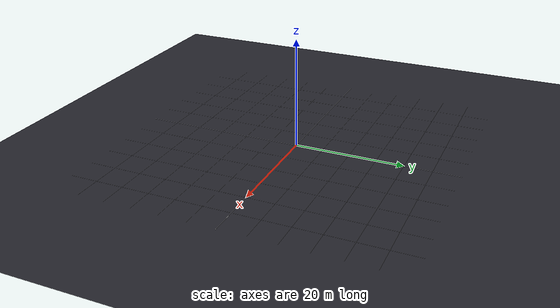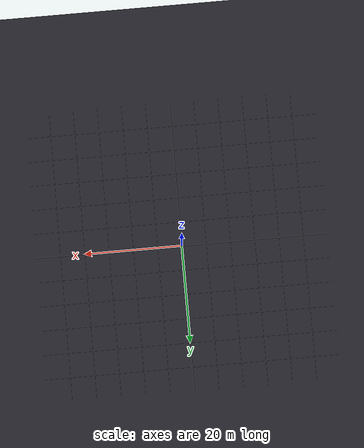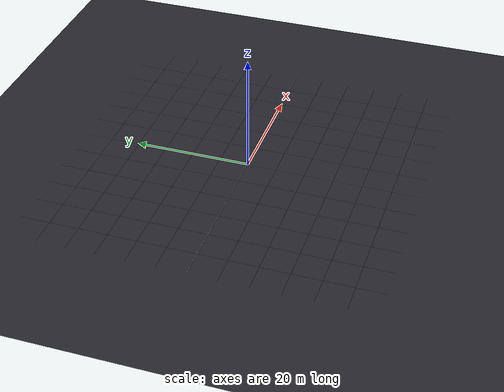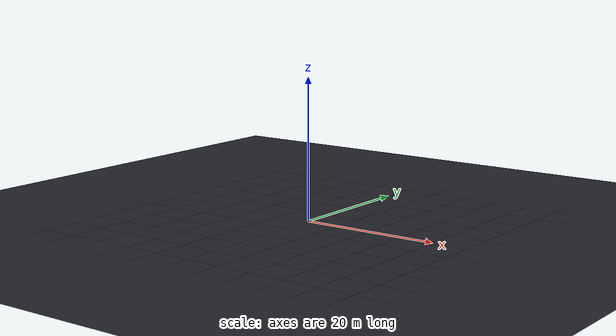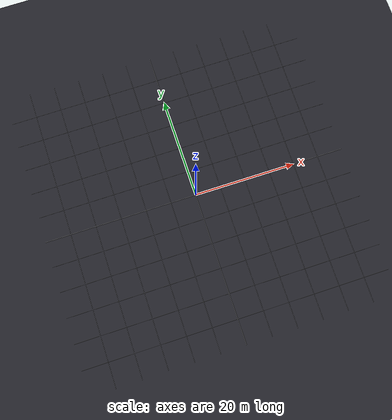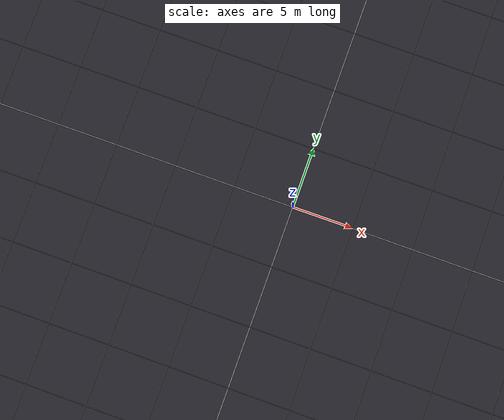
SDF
<?xml version="1.0"?>
<sdf version="1.6">
  <!--
    Grid Floor for Formation Control Arena
    50m x 50m area with visual grid pattern
  -->
  <model name="grid_floor">
    <static>true</static>

    <link name="floor_link">
      <!-- Ground plane collision -->
      <collision name="collision">
        <geometry>
          <plane>
            <normal>0 0 1</normal>
            <size>60 60</size>
          </plane>
        </geometry>
        <surface>
          <friction>
            <ode>
              <mu>100</mu>
              <mu2>50</mu2>
            </ode>
          </friction>
        </surface>
      </collision>

      <!-- Main floor visual (dark gray) -->
      <visual name="floor_visual">
        <geometry>
          <plane>
            <normal>0 0 1</normal>
            <size>60 60</size>
          </plane>
        </geometry>
        <material>
          <ambient>0.15 0.15 0.18 1</ambient>
          <diffuse>0.15 0.15 0.18 1</diffuse>
          <specular>0.1 0.1 0.1 1</specular>
        </material>
      </visual>
    </link>

    <!-- Grid lines (every 5m - major, every 1m - minor) -->
    <!-- X-axis lines (horizontal) -->
    <link name="grid_x_major">
      <pose>0 0 0.001 0 0 0</pose>
      <visual name="line_x_n25">
        <pose>0 -25 0 0 0 0</pose>
        <geometry><box><size>60 0.05 0.001</size></box></geometry>
        <material><ambient>0.4 0.4 0.4 1</ambient><diffuse>0.4 0.4 0.4 1</diffuse></material>
      </visual>
      <visual name="line_x_n20">
        <pose>0 -20 0 0 0 0</pose>
        <geometry><box><size>60 0.05 0.001</size></box></geometry>
        <material><ambient>0.4 0.4 0.4 1</ambient><diffuse>0.4 0.4 0.4 1</diffuse></material>
      </visual>
      <visual name="line_x_n15">
        <pose>0 -15 0 0 0 0</pose>
        <geometry><box><size>60 0.05 0.001</size></box></geometry>
        <material><ambient>0.4 0.4 0.4 1</ambient><diffuse>0.4 0.4 0.4 1</diffuse></material>
      </visual>
      <visual name="line_x_n10">
        <pose>0 -10 0 0 0 0</pose>
        <geometry><box><size>60 0.05 0.001</size></box></geometry>
        <material><ambient>0.4 0.4 0.4 1</ambient><diffuse>0.4 0.4 0.4 1</diffuse></material>
      </visual>
      <visual name="line_x_n5">
        <pose>0 -5 0 0 0 0</pose>
        <geometry><box><size>60 0.05 0.001</size></box></geometry>
        <material><ambient>0.4 0.4 0.4 1</ambient><diffuse>0.4 0.4 0.4 1</diffuse></material>
      </visual>
      <visual name="line_x_0">
        <pose>0 0 0 0 0 0</pose>
        <geometry><box><size>60 0.08 0.001</size></box></geometry>
        <material><ambient>0.6 0.6 0.6 1</ambient><diffuse>0.6 0.6 0.6 1</diffuse></material>
      </visual>
      <visual name="line_x_5">
        <pose>0 5 0 0 0 0</pose>
        <geometry><box><size>60 0.05 0.001</size></box></geometry>
        <material><ambient>0.4 0.4 0.4 1</ambient><diffuse>0.4 0.4 0.4 1</diffuse></material>
      </visual>
      <visual name="line_x_10">
        <pose>0 10 0 0 0 0</pose>
        <geometry><box><size>60 0.05 0.001</size></box></geometry>
        <material><ambient>0.4 0.4 0.4 1</ambient><diffuse>0.4 0.4 0.4 1</diffuse></material>
      </visual>
      <visual name="line_x_15">
        <pose>0 15 0 0 0 0</pose>
        <geometry><box><size>60 0.05 0.001</size></box></geometry>
        <material><ambient>0.4 0.4 0.4 1</ambient><diffuse>0.4 0.4 0.4 1</diffuse></material>
      </visual>
      <visual name="line_x_20">
        <pose>0 20 0 0 0 0</pose>
        <geometry><box><size>60 0.05 0.001</size></box></geometry>
        <material><ambient>0.4 0.4 0.4 1</ambient><diffuse>0.4 0.4 0.4 1</diffuse></material>
      </visual>
      <visual name="line_x_25">
        <pose>0 25 0 0 0 0</pose>
        <geometry><box><size>60 0.05 0.001</size></box></geometry>
        <material><ambient>0.4 0.4 0.4 1</ambient><diffuse>0.4 0.4 0.4 1</diffuse></material>
      </visual>
    </link>

    <!-- Y-axis lines (vertical) -->
    <link name="grid_y_major">
      <pose>0 0 0.001 0 0 0</pose>
      <visual name="line_y_n25">
        <pose>-25 0 0 0 0 0</pose>
        <geometry><box><size>0.05 60 0.001</size></box></geometry>
        <material><ambient>0.4 0.4 0.4 1</ambient><diffuse>0.4 0.4 0.4 1</diffuse></material>
      </visual>
      <visual name="line_y_n20">
        <pose>-20 0 0 0 0 0</pose>
        <geometry><box><size>0.05 60 0.001</size></box></geometry>
        <material><ambient>0.4 0.4 0.4 1</ambient><diffuse>0.4 0.4 0.4 1</diffuse></material>
      </visual>
      <visual name="line_y_n15">
        <pose>-15 0 0 0 0 0</pose>
        <geometry><box><size>0.05 60 0.001</size></box></geometry>
        <material><ambient>0.4 0.4 0.4 1</ambient><diffuse>0.4 0.4 0.4 1</diffuse></material>
      </visual>
      <visual name="line_y_n10">
        <pose>-10 0 0 0 0 0</pose>
        <geometry><box><size>0.05 60 0.001</size></box></geometry>
        <material><ambient>0.4 0.4 0.4 1</ambient><diffuse>0.4 0.4 0.4 1</diffuse></material>
      </visual>
      <visual name="line_y_n5">
        <pose>-5 0 0 0 0 0</pose>
        <geometry><box><size>0.05 60 0.001</size></box></geometry>
        <material><ambient>0.4 0.4 0.4 1</ambient><diffuse>0.4 0.4 0.4 1</diffuse></material>
      </visual>
      <visual name="line_y_0">
        <pose>0 0 0 0 0 0</pose>
        <geometry><box><size>0.08 60 0.001</size></box></geometry>
        <material><ambient>0.6 0.6 0.6 1</ambient><diffuse>0.6 0.6 0.6 1</diffuse></material>
      </visual>
      <visual name="line_y_5">
        <pose>5 0 0 0 0 0</pose>
        <geometry><box><size>0.05 60 0.001</size></box></geometry>
        <material><ambient>0.4 0.4 0.4 1</ambient><diffuse>0.4 0.4 0.4 1</diffuse></material>
      </visual>
      <visual name="line_y_10">
        <pose>10 0 0 0 0 0</pose>
        <geometry><box><size>0.05 60 0.001</size></box></geometry>
        <material><ambient>0.4 0.4 0.4 1</ambient><diffuse>0.4 0.4 0.4 1</diffuse></material>
      </visual>
      <visual name="line_y_15">
        <pose>15 0 0 0 0 0</pose>
        <geometry><box><size>0.05 60 0.001</size></box></geometry>
        <material><ambient>0.4 0.4 0.4 1</ambient><diffuse>0.4 0.4 0.4 1</diffuse></material>
      </visual>
      <visual name="line_y_20">
        <pose>20 0 0 0 0 0</pose>
        <geometry><box><size>0.05 60 0.001</size></box></geometry>
        <material><ambient>0.4 0.4 0.4 1</ambient><diffuse>0.4 0.4 0.4 1</diffuse></material>
      </visual>
      <visual name="line_y_25">
        <pose>25 0 0 0 0 0</pose>
        <geometry><box><size>0.05 60 0.001</size></box></geometry>
        <material><ambient>0.4 0.4 0.4 1</ambient><diffuse>0.4 0.4 0.4 1</diffuse></material>
      </visual>
    </link>

  </model>
</sdf>
